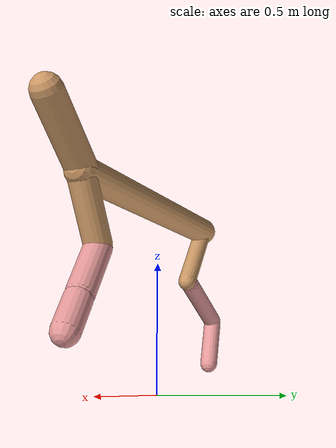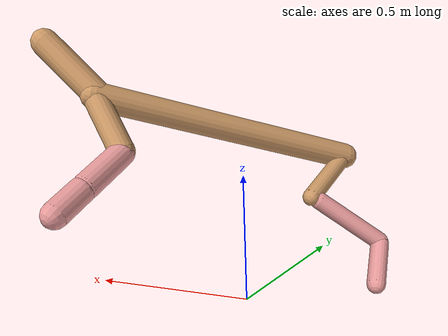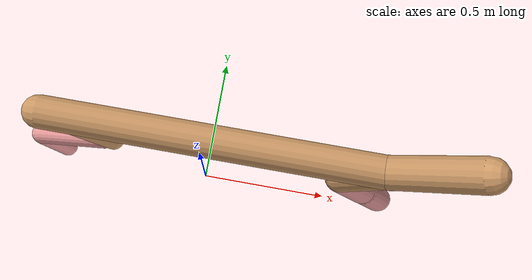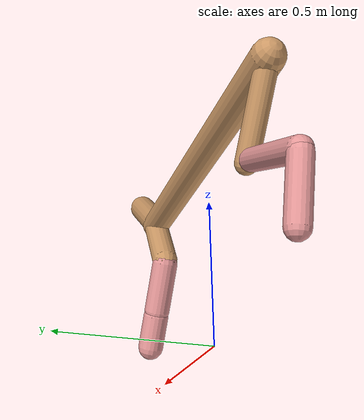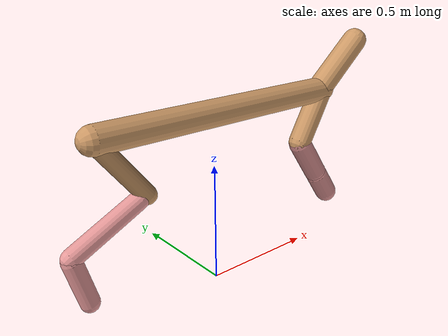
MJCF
<mujoco model="cheetah">
  <compiler angle="radian" coordinate="local" inertiafromgeom="true" settotalmass="14" />
  <default>
    <joint armature=".1" damping=".01" limited="true" solimplimit="0 .8 .03" solreflimit=".02 1" stiffness="8" />
    <geom conaffinity="0" condim="3" contype="1" friction="0.8 .1 .1" rgba="0.8 0.6 .4 1" solimp="0.0 0.8 0.01" solref="0.02 1" />
    <motor ctrllimited="true" ctrlrange="-1 1" />
  </default>
  <size nstack="300000" nuser_geom="1" />
  <option gravity="0 0 -9.81" timestep="0.01" />
  <worldbody>
    <body name="torso" pos="0.0 0.0 0.7171522038246176">
      <joint armature="0" axis="1 0 0" damping="0" limited="false" name="ignorex" pos="0 0 0" stiffness="0" type="slide" />
      <joint armature="0" axis="0 0 1" damping="0" limited="false" name="ignorez" pos="0 0 0" stiffness="0" type="slide" />
      <joint armature="0" axis="0 1 0" damping="0" limited="false" name="ignorey" pos="0 0 0" stiffness="0" type="hinge" />
      <geom fromto="-0.5 0.0 0.0 0.618141009120253 0.0 0.0" name="torso" size="0.054653582372463747" type="capsule" />
      <geom axisangle="0 1 0 .87" name="head" pos="0.718141009120253 0.0 0.1" size="0.054796947693483186 0.15" type="capsule" />

      <body name="bthigh" pos="-.5 0 0">
        <joint axis="0 1 0" damping="6" name="bthigh" pos="0 0 0" range="-.52 1.05" stiffness="240" type="hinge" />
        <geom axisangle="0 1 0 -3.8" name="bthigh" pos="0.10128507887322265 0.0 -0.13167060253518945" size="0.036670482186801134 0.14710768606319455" type="capsule" />
        <body name="bshin" pos="0.1625701577464453 0.0 -0.2533412050703789">
          <joint axis="0 1 0" damping="4.5" name="bshin" pos="0 0 0" range="-.785 .785" stiffness="180" type="hinge" />
          <geom axisangle="0 1 0 -2.03" name="bshin" pos="-0.14195017764656495 0.0 -0.07097508882328248" rgba="0.9 0.6 0.6 1" size="0.036670482186801134 0.15218036489295986" type="capsule" />
          <body name="bfoot" pos="-0.2839003552931299 0.0 -0.14195017764656495">
            <joint axis="0 1 0" damping="3" name="bfoot" pos="0 0 0" range="-.4 .785" stiffness="120" type="hinge" />
            <geom axisangle="0 1 0 -.27" name="bfoot" pos="0.030403718601429562 0.0 -0.09830535681128892" rgba="0.9 0.6 0.6 1" size="0.036670482186801134 0.09536636199958819" type="capsule" />
            <inertial mass="10" />
          </body>
        </body>
      </body>
      <body name="fthigh" pos="0.618141009120253 0.0 0.0">
        <joint axis="0 1 0" damping="4.5" name="fthigh" pos="0 0 0" range="-1.5 0.8" stiffness="180" type="hinge" />
        <geom axisangle="0 1 0 .52" name="fthigh" pos="-0.06647915399437468 0.0 -0.11396426399035658" size="0.04961173574718895 0.12601240629591032" type="capsule" />
        <body name="fshin" pos="-0.13295830798874936 0.0 -0.22792852798071317">
          <joint axis="0 1 0" damping="3" name="fshin" pos="0 0 0" range="-1.2 1.1" stiffness="120" type="hinge" />
          <geom axisangle="0 1 0 -.6" name="fshin" pos="0.061739368184723586 0.0 -0.08548527902500189" rgba="0.9 0.6 0.6 1" size="0.04961173574718895 0.10043094035613903" type="capsule" />
          <body name="ffoot" pos="0.12347873636944717 0.0 -0.17097055805000377">
            <joint axis="0 1 0" damping="1.5" name="ffoot" pos="0 0 0" range="-3.1 -0.3" stiffness="60" type="hinge" />
            <geom axisangle="0 1 0 -.6" name="ffoot" pos="0.04301126613657846 0.0 -0.06690641399023319" rgba="0.9 0.6 0.6 1" size="0.04961173574718895 0.06632231910311069" type="capsule" />
            <inertial mass="10" />
          </body>
        </body>
      </body>
    </body>
  </worldbody>
  <actuator>
    <motor gear="120" joint="bthigh" name="bthigh" />
    <motor gear="90" joint="bshin" name="bshin" />
    <motor gear="60" joint="bfoot" name="bfoot" />
    <motor gear="120" joint="fthigh" name="fthigh" />
    <motor gear="60" joint="fshin" name="fshin" />
    <motor gear="30" joint="ffoot" name="ffoot" />
  </actuator>
</mujoco>
